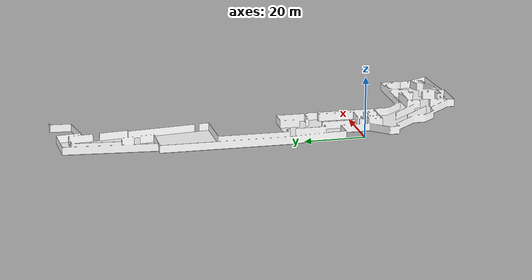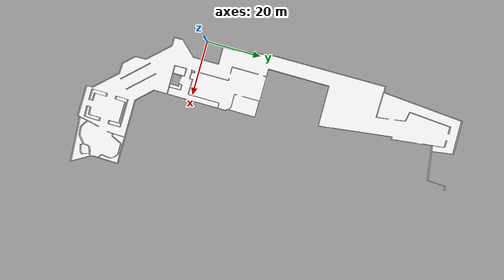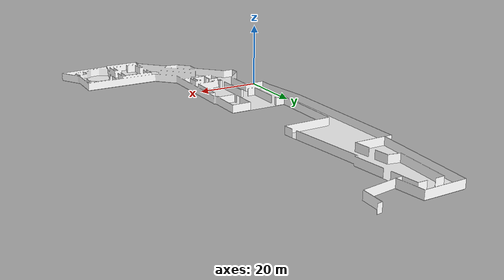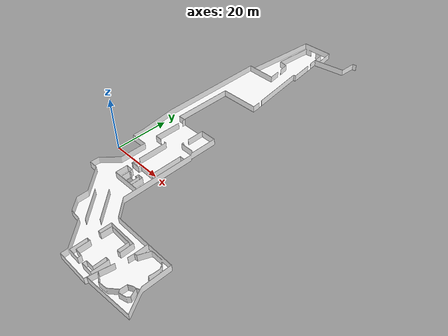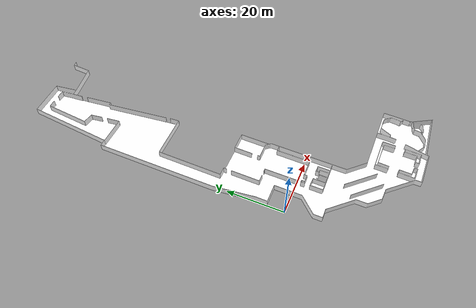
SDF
<?xml version='1.0' encoding='utf-8'?>
<sdf version="1.7">
  <model name="trl_TRL_L4">
    <static>true</static>
    <link name="floor_1">
      <visual name="visual">
        <geometry>
          <mesh>
            <uri>model://trl_TRL_L4/meshes/floor_1.obj</uri>
          </mesh>
        </geometry>
        <material>
          <diffuse>1.0 1.0 1.0</diffuse>
          <specular>0.1 0.1 0.1</specular>
          <pbr>
            <metal>
              <metalness>0.0</metalness>
              <albedo_map>model://trl_TRL_L4/meshes/blue_linoleum.png</albedo_map>
            </metal>
          </pbr>
          <script>
            <uri>model://trl_TRL_L4/meshes/</uri>
            <name>floor_1_Diffuse</name>
          </script>
        </material>
      </visual>
      <collision name="collision">
        <geometry>
          <mesh>
            <uri>model://trl_TRL_L4/meshes/floor_1.obj</uri>
          </mesh>
        </geometry>
        <surface>
          <contact>
            <collide_bitmask>0x01</collide_bitmask>
          </contact>
        </surface>
      </collision>
    </link>
    <link name="wall_1">
      <visual name="wall_1">
        <geometry>
          <mesh>
            <uri>model://trl_TRL_L4/meshes/wall_1.obj</uri>
          </mesh>
        </geometry>
        <transparency>0.0</transparency>
        <material>
          <diffuse>1.0 1.0 1.0</diffuse>
          <specular>0.1 0.1 0.1</specular>
          <pbr>
            <metal>
              <metalness>0.0</metalness>
              <albedo_map>model://trl_TRL_L4/meshes/default.png</albedo_map>
            </metal>
          </pbr>
          <script>
            <uri>model://trl_TRL_L4/meshes/</uri>
            <name>wall_1_Diffuse</name>
          </script>
        </material>
      </visual>
      <collision name="collision">
        <geometry>
          <mesh>
            <uri>model://trl_TRL_L4/meshes/wall_1.obj</uri>
          </mesh>
        </geometry>
        <surface>
          <contact>
            <collide_bitmask>0x01</collide_bitmask>
          </contact>
        </surface>
      </collision>
      <pose>-1.5267594893602958 -38.156243866112106 0 0 0 0</pose>
    </link>
  </model>
</sdf>
